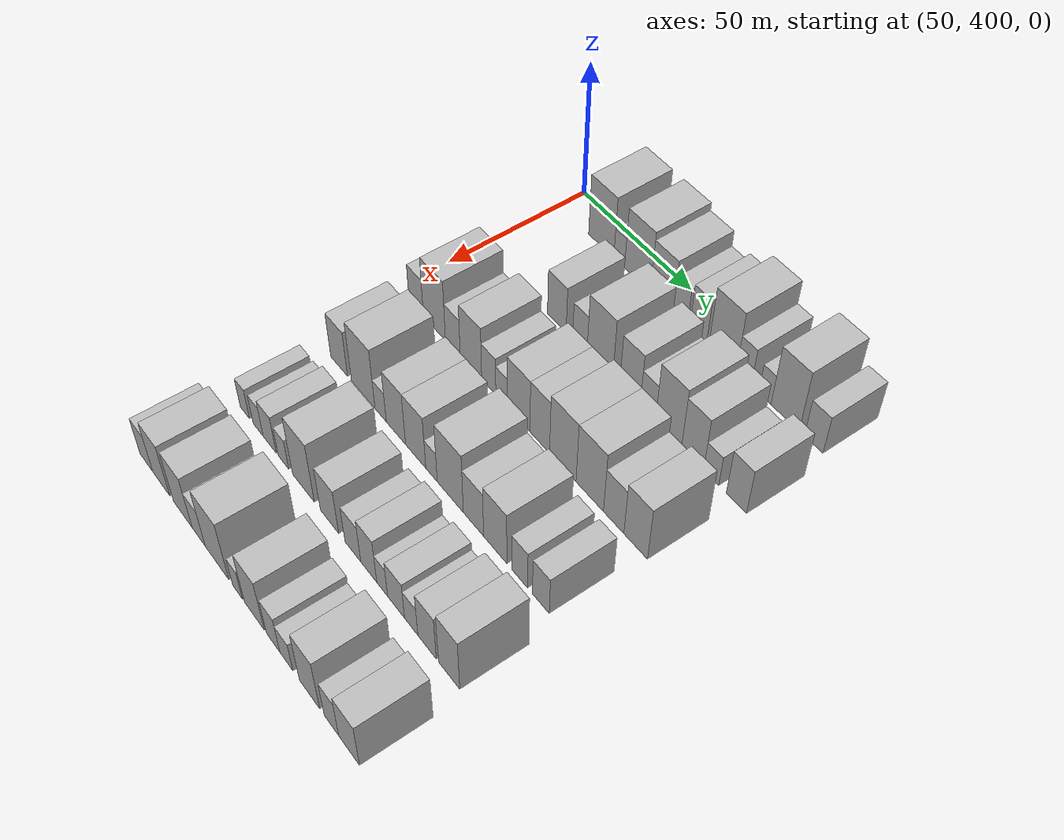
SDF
<sdf version="1.6">
 <world name="default">
  <model name="building_101">
   <static>1</static>
   <pose>50.0000 420.7283 0 0.000000 0.000000 0.000000</pose>
   <link name="link">
    <pose>0 0 12.00 0 0 0</pose>
    <collision name="collision"><geometry><box><size>20.0000 11.9931 24.0000</size></box></geometry></collision>
    <visual name="visual">
     <cast_shadows>0</cast_shadows>
     <geometry><box><size>20.0000 11.9931 24.0000</size></box></geometry>
     <material>
      <script>
       <uri>model://HANNAS_wall/materials/scripts</uri>
       <uri>model://HANNAS_wall/materials/textures</uri>
       <name>vrc/HANNAS_wall</name>
      </script>
     </material>
    </visual>
   </link>
  </model>
  <model name="building_102">
   <static>1</static>
   <pose>50.0000 429.2254 0 0.000000 0.000000 0.000000</pose>
   <link name="link">
    <pose>0 0 6.00 0 0 0</pose>
    <collision name="collision"><geometry><box><size>20.0000 5.0011 12.0000</size></box></geometry></collision>
    <visual name="visual">
     <cast_shadows>0</cast_shadows>
     <geometry><box><size>20.0000 5.0011 12.0000</size></box></geometry>
     <material>
      <script>
       <uri>model://HANNAS_wall/materials/scripts</uri>
       <uri>model://HANNAS_wall/materials/textures</uri>
       <name>vrc/HANNAS_wall</name>
      </script>
     </material>
    </visual>
   </link>
  </model>
  <model name="building_103">
   <static>1</static>
   <pose>50.0000 437.6671 0 0.000000 0.000000 0.000000</pose>
   <link name="link">
    <pose>0 0 12.00 0 0 0</pose>
    <collision name="collision"><geometry><box><size>20.0000 11.8823 24.0000</size></box></geometry></collision>
    <visual name="visual">
     <cast_shadows>0</cast_shadows>
     <geometry><box><size>20.0000 11.8823 24.0000</size></box></geometry>
     <material>
      <script>
       <uri>model://HANNAS_wall/materials/scripts</uri>
       <uri>model://HANNAS_wall/materials/textures</uri>
       <name>vrc/HANNAS_wall</name>
      </script>
     </material>
    </visual>
   </link>
  </model>
  <model name="building_104">
   <static>1</static>
   <pose>50.0000 448.6362 0 0.000000 0.000000 0.000000</pose>
   <link name="link">
    <pose>0 0 10.50 0 0 0</pose>
    <collision name="collision"><geometry><box><size>20.0000 10.0559 21.0000</size></box></geometry></collision>
    <visual name="visual">
     <cast_shadows>0</cast_shadows>
     <geometry><box><size>20.0000 10.0559 21.0000</size></box></geometry>
     <material>
      <script>
       <uri>model://HANNAS_wall/materials/scripts</uri>
       <uri>model://HANNAS_wall/materials/textures</uri>
       <name>vrc/HANNAS_wall</name>
      </script>
     </material>
    </visual>
   </link>
  </model>
  <model name="building_105">
   <static>1</static>
   <pose>50.0000 456.7683 0 0.000000 0.000000 0.000000</pose>
   <link name="link">
    <pose>0 0 7.50 0 0 0</pose>
    <collision name="collision"><geometry><box><size>20.0000 6.2082 15.0000</size></box></geometry></collision>
    <visual name="visual">
     <cast_shadows>0</cast_shadows>
     <geometry><box><size>20.0000 6.2082 15.0000</size></box></geometry>
     <material>
      <script>
       <uri>model://HANNAS_wall/materials/scripts</uri>
       <uri>model://HANNAS_wall/materials/textures</uri>
       <name>vrc/HANNAS_wall</name>
      </script>
     </material>
    </visual>
   </link>
  </model>
  <model name="building_106">
   <static>1</static>
   <pose>50.0000 464.4833 0 0.000000 0.000000 0.000000</pose>
   <link name="link">
    <pose>0 0 9.00 0 0 0</pose>
    <collision name="collision"><geometry><box><size>20.0000 7.2217 18.0000</size></box></geometry></collision>
    <visual name="visual">
     <cast_shadows>0</cast_shadows>
     <geometry><box><size>20.0000 7.2217 18.0000</size></box></geometry>
     <material>
      <script>
       <uri>model://HANNAS_wall/materials/scripts</uri>
       <uri>model://HANNAS_wall/materials/textures</uri>
       <name>vrc/HANNAS_wall</name>
      </script>
     </material>
    </visual>
   </link>
  </model>
  <model name="building_107">
   <static>1</static>
   <pose>50.0000 474.8473 0 0.000000 0.000000 0.000000</pose>
   <link name="link">
    <pose>0 0 12.00 0 0 0</pose>
    <collision name="collision"><geometry><box><size>20.0000 11.5063 24.0000</size></box></geometry></collision>
    <visual name="visual">
     <cast_shadows>0</cast_shadows>
     <geometry><box><size>20.0000 11.5063 24.0000</size></box></geometry>
     <material>
      <script>
       <uri>model://HANNAS_wall/materials/scripts</uri>
       <uri>model://HANNAS_wall/materials/textures</uri>
       <name>vrc/HANNAS_wall</name>
      </script>
     </material>
    </visual>
   </link>
  </model>
  <model name="building_108">
   <static>1</static>
   <pose>50.0000 483.6590 0 0.000000 0.000000 0.000000</pose>
   <link name="link">
    <pose>0 0 7.50 0 0 0</pose>
    <collision name="collision"><geometry><box><size>20.0000 6.1172 15.0000</size></box></geometry></collision>
    <visual name="visual">
     <cast_shadows>0</cast_shadows>
     <geometry><box><size>20.0000 6.1172 15.0000</size></box></geometry>
     <material>
      <script>
       <uri>model://HANNAS_wall/materials/scripts</uri>
       <uri>model://HANNAS_wall/materials/textures</uri>
       <name>vrc/HANNAS_wall</name>
      </script>
     </material>
    </visual>
   </link>
  </model>
  <model name="building_109">
   <static>1</static>
   <pose>50.0000 492.1806 0 0.000000 0.000000 0.000000</pose>
   <link name="link">
    <pose>0 0 6.00 0 0 0</pose>
    <collision name="collision"><geometry><box><size>20.0000 4.9259 12.0000</size></box></geometry></collision>
    <visual name="visual">
     <cast_shadows>0</cast_shadows>
     <geometry><box><size>20.0000 4.9259 12.0000</size></box></geometry>
     <material>
      <script>
       <uri>model://HANNAS_wall/materials/scripts</uri>
       <uri>model://HANNAS_wall/materials/textures</uri>
       <name>vrc/HANNAS_wall</name>
      </script>
     </material>
    </visual>
   </link>
  </model>
  <model name="building_110">
   <static>1</static>
   <pose>50.0000 500.1746 0 0.000000 0.000000 0.000000</pose>
   <link name="link">
    <pose>0 0 12.00 0 0 0</pose>
    <collision name="collision"><geometry><box><size>20.0000 11.0621 24.0000</size></box></geometry></collision>
    <visual name="visual">
     <cast_shadows>0</cast_shadows>
     <geometry><box><size>20.0000 11.0621 24.0000</size></box></geometry>
     <material>
      <script>
       <uri>model://HANNAS_wall/materials/scripts</uri>
       <uri>model://HANNAS_wall/materials/textures</uri>
       <name>vrc/HANNAS_wall</name>
      </script>
     </material>
    </visual>
   </link>
  </model>
  <model name="building_111">
   <static>1</static>
   <pose>50.0000 511.2587 0 0.000000 0.000000 0.000000</pose>
   <link name="link">
    <pose>0 0 7.50 0 0 0</pose>
    <collision name="collision"><geometry><box><size>20.0000 7.1062 15.0000</size></box></geometry></collision>
    <visual name="visual">
     <cast_shadows>0</cast_shadows>
     <geometry><box><size>20.0000 7.1062 15.0000</size></box></geometry>
     <material>
      <script>
       <uri>model://HANNAS_wall/materials/scripts</uri>
       <uri>model://HANNAS_wall/materials/textures</uri>
       <name>vrc/HANNAS_wall</name>
      </script>
     </material>
    </visual>
   </link>
  </model>
  <model name="building_221">
   <static>1</static>
   <pose>79.0000 437.3411 0 0.000000 0.000000 0.000000</pose>
   <link name="link">
    <pose>0 0 9.00 0 0 0</pose>
    <collision name="collision"><geometry><box><size>20.0000 8.6827 18.0000</size></box></geometry></collision>
    <visual name="visual">
     <cast_shadows>0</cast_shadows>
     <geometry><box><size>20.0000 8.6827 18.0000</size></box></geometry>
     <material>
      <script>
       <uri>model://HANNAS_wall/materials/scripts</uri>
       <uri>model://HANNAS_wall/materials/textures</uri>
       <name>vrc/HANNAS_wall</name>
      </script>
     </material>
    </visual>
   </link>
  </model>
  <model name="building_222">
   <static>1</static>
   <pose>79.0000 447.9605 0 0.000000 0.000000 0.000000</pose>
   <link name="link">
    <pose>0 0 7.50 0 0 0</pose>
    <collision name="collision"><geometry><box><size>20.0000 6.5560 15.0000</size></box></geometry></collision>
    <visual name="visual">
     <cast_shadows>0</cast_shadows>
     <geometry><box><size>20.0000 6.5560 15.0000</size></box></geometry>
     <material>
      <script>
       <uri>model://HANNAS_wall/materials/scripts</uri>
       <uri>model://HANNAS_wall/materials/textures</uri>
       <name>vrc/HANNAS_wall</name>
      </script>
     </material>
    </visual>
   </link>
  </model>
  <model name="building_223">
   <static>1</static>
   <pose>79.0000 456.9536 0 0.000000 0.000000 0.000000</pose>
   <link name="link">
    <pose>0 0 12.00 0 0 0</pose>
    <collision name="collision"><geometry><box><size>20.0000 11.4301 24.0000</size></box></geometry></collision>
    <visual name="visual">
     <cast_shadows>0</cast_shadows>
     <geometry><box><size>20.0000 11.4301 24.0000</size></box></geometry>
     <material>
      <script>
       <uri>model://HANNAS_wall/materials/scripts</uri>
       <uri>model://HANNAS_wall/materials/textures</uri>
       <name>vrc/HANNAS_wall</name>
      </script>
     </material>
    </visual>
   </link>
  </model>
  <model name="building_224">
   <static>1</static>
   <pose>79.0000 470.0552 0 0.000000 0.000000 0.000000</pose>
   <link name="link">
    <pose>0 0 10.50 0 0 0</pose>
    <collision name="collision"><geometry><box><size>20.0000 8.7731 21.0000</size></box></geometry></collision>
    <visual name="visual">
     <cast_shadows>0</cast_shadows>
     <geometry><box><size>20.0000 8.7731 21.0000</size></box></geometry>
     <material>
      <script>
       <uri>model://HANNAS_wall/materials/scripts</uri>
       <uri>model://HANNAS_wall/materials/textures</uri>
       <name>vrc/HANNAS_wall</name>
      </script>
     </material>
    </visual>
   </link>
  </model>
  <model name="building_225">
   <static>1</static>
   <pose>79.0000 477.6667 0 0.000000 0.000000 0.000000</pose>
   <link name="link">
    <pose>0 0 7.50 0 0 0</pose>
    <collision name="collision"><geometry><box><size>20.0000 6.4498 15.0000</size></box></geometry></collision>
    <visual name="visual">
     <cast_shadows>0</cast_shadows>
     <geometry><box><size>20.0000 6.4498 15.0000</size></box></geometry>
     <material>
      <script>
       <uri>model://HANNAS_wall/materials/scripts</uri>
       <uri>model://HANNAS_wall/materials/textures</uri>
       <name>vrc/HANNAS_wall</name>
      </script>
     </material>
    </visual>
   </link>
  </model>
  <model name="building_226">
   <static>1</static>
   <pose>79.0000 486.2856 0 0.000000 0.000000 0.000000</pose>
   <link name="link">
    <pose>0 0 12.00 0 0 0</pose>
    <collision name="collision"><geometry><box><size>20.0000 10.7881 24.0000</size></box></geometry></collision>
    <visual name="visual">
     <cast_shadows>0</cast_shadows>
     <geometry><box><size>20.0000 10.7881 24.0000</size></box></geometry>
     <material>
      <script>
       <uri>model://HANNAS_wall/materials/scripts</uri>
       <uri>model://HANNAS_wall/materials/textures</uri>
       <name>vrc/HANNAS_wall</name>
      </script>
     </material>
    </visual>
   </link>
  </model>
  <model name="building_227">
   <static>1</static>
   <pose>79.0000 496.1468 0 0.000000 0.000000 0.000000</pose>
   <link name="link">
    <pose>0 0 10.50 0 0 0</pose>
    <collision name="collision"><geometry><box><size>20.0000 8.9344 21.0000</size></box></geometry></collision>
    <visual name="visual">
     <cast_shadows>0</cast_shadows>
     <geometry><box><size>20.0000 8.9344 21.0000</size></box></geometry>
     <material>
      <script>
       <uri>model://HANNAS_wall/materials/scripts</uri>
       <uri>model://HANNAS_wall/materials/textures</uri>
       <name>vrc/HANNAS_wall</name>
      </script>
     </material>
    </visual>
   </link>
  </model>
  <model name="building_228">
   <static>1</static>
   <pose>79.0000 503.5847 0 0.000000 0.000000 0.000000</pose>
   <link name="link">
    <pose>0 0 6.00 0 0 0</pose>
    <collision name="collision"><geometry><box><size>20.0000 5.9413 12.0000</size></box></geometry></collision>
    <visual name="visual">
     <cast_shadows>0</cast_shadows>
     <geometry><box><size>20.0000 5.9413 12.0000</size></box></geometry>
     <material>
      <script>
       <uri>model://HANNAS_wall/materials/scripts</uri>
       <uri>model://HANNAS_wall/materials/textures</uri>
       <name>vrc/HANNAS_wall</name>
      </script>
     </material>
    </visual>
   </link>
  </model>
  <model name="building_229">
   <static>1</static>
   <pose>79.0000 513.4281 0 0.000000 0.000000 0.000000</pose>
   <link name="link">
    <pose>0 0 9.00 0 0 0</pose>
    <collision name="collision"><geometry><box><size>20.0000 7.7455 18.0000</size></box></geometry></collision>
    <visual name="visual">
     <cast_shadows>0</cast_shadows>
     <geometry><box><size>20.0000 7.7455 18.0000</size></box></geometry>
     <material>
      <script>
       <uri>model://HANNAS_wall/materials/scripts</uri>
       <uri>model://HANNAS_wall/materials/textures</uri>
       <name>vrc/HANNAS_wall</name>
      </script>
     </material>
    </visual>
   </link>
  </model>
  <model name="building_328">
   <static>1</static>
   <pose>108.0000 409.5219 0 0.000000 0.000000 0.000000</pose>
   <link name="link">
    <pose>0 0 7.50 0 0 0</pose>
    <collision name="collision"><geometry><box><size>20.0000 7.3117 15.0000</size></box></geometry></collision>
    <visual name="visual">
     <cast_shadows>0</cast_shadows>
     <geometry><box><size>20.0000 7.3117 15.0000</size></box></geometry>
     <material>
      <script>
       <uri>model://HANNAS_wall/materials/scripts</uri>
       <uri>model://HANNAS_wall/materials/textures</uri>
       <name>vrc/HANNAS_wall</name>
      </script>
     </material>
    </visual>
   </link>
  </model>
  <model name="building_329">
   <static>1</static>
   <pose>108.0000 418.7016 0 0.000000 0.000000 0.000000</pose>
   <link name="link">
    <pose>0 0 12.00 0 0 0</pose>
    <collision name="collision"><geometry><box><size>20.0000 11.0476 24.0000</size></box></geometry></collision>
    <visual name="visual">
     <cast_shadows>0</cast_shadows>
     <geometry><box><size>20.0000 11.0476 24.0000</size></box></geometry>
     <material>
      <script>
       <uri>model://HANNAS_wall/materials/scripts</uri>
       <uri>model://HANNAS_wall/materials/textures</uri>
       <name>vrc/HANNAS_wall</name>
      </script>
     </material>
    </visual>
   </link>
  </model>
  <model name="building_330">
   <static>1</static>
   <pose>108.0000 427.8546 0 0.000000 0.000000 0.000000</pose>
   <link name="link">
    <pose>0 0 7.50 0 0 0</pose>
    <collision name="collision"><geometry><box><size>20.0000 7.2585 15.0000</size></box></geometry></collision>
    <visual name="visual">
     <cast_shadows>0</cast_shadows>
     <geometry><box><size>20.0000 7.2585 15.0000</size></box></geometry>
     <material>
      <script>
       <uri>model://HANNAS_wall/materials/scripts</uri>
       <uri>model://HANNAS_wall/materials/textures</uri>
       <name>vrc/HANNAS_wall</name>
      </script>
     </material>
    </visual>
   </link>
  </model>
  <model name="building_331">
   <static>1</static>
   <pose>108.0000 436.6164 0 0.000000 0.000000 0.000000</pose>
   <link name="link">
    <pose>0 0 10.50 0 0 0</pose>
    <collision name="collision"><geometry><box><size>20.0000 10.2651 21.0000</size></box></geometry></collision>
    <visual name="visual">
     <cast_shadows>0</cast_shadows>
     <geometry><box><size>20.0000 10.2651 21.0000</size></box></geometry>
     <material>
      <script>
       <uri>model://HANNAS_wall/materials/scripts</uri>
       <uri>model://HANNAS_wall/materials/textures</uri>
       <name>vrc/HANNAS_wall</name>
      </script>
     </material>
    </visual>
   </link>
  </model>
  <model name="building_332">
   <static>1</static>
   <pose>108.0000 445.0674 0 0.000000 0.000000 0.000000</pose>
   <link name="link">
    <pose>0 0 7.50 0 0 0</pose>
    <collision name="collision"><geometry><box><size>20.0000 6.6370 15.0000</size></box></geometry></collision>
    <visual name="visual">
     <cast_shadows>0</cast_shadows>
     <geometry><box><size>20.0000 6.6370 15.0000</size></box></geometry>
     <material>
      <script>
       <uri>model://HANNAS_wall/materials/scripts</uri>
       <uri>model://HANNAS_wall/materials/textures</uri>
       <name>vrc/HANNAS_wall</name>
      </script>
     </material>
    </visual>
   </link>
  </model>
  <model name="building_333">
   <static>1</static>
   <pose>108.0000 451.0338 0 0.000000 0.000000 0.000000</pose>
   <link name="link">
    <pose>0 0 6.00 0 0 0</pose>
    <collision name="collision"><geometry><box><size>20.0000 5.2958 12.0000</size></box></geometry></collision>
    <visual name="visual">
     <cast_shadows>0</cast_shadows>
     <geometry><box><size>20.0000 5.2958 12.0000</size></box></geometry>
     <material>
      <script>
       <uri>model://HANNAS_wall/materials/scripts</uri>
       <uri>model://HANNAS_wall/materials/textures</uri>
       <name>vrc/HANNAS_wall</name>
      </script>
     </material>
    </visual>
   </link>
  </model>
  <model name="building_334">
   <static>1</static>
   <pose>108.0000 458.7897 0 0.000000 0.000000 0.000000</pose>
   <link name="link">
    <pose>0 0 10.50 0 0 0</pose>
    <collision name="collision"><geometry><box><size>20.0000 10.2161 21.0000</size></box></geometry></collision>
    <visual name="visual">
     <cast_shadows>0</cast_shadows>
     <geometry><box><size>20.0000 10.2161 21.0000</size></box></geometry>
     <material>
      <script>
       <uri>model://HANNAS_wall/materials/scripts</uri>
       <uri>model://HANNAS_wall/materials/textures</uri>
       <name>vrc/HANNAS_wall</name>
      </script>
     </material>
    </visual>
   </link>
  </model>
  <model name="building_335">
   <static>1</static>
   <pose>108.0000 468.2297 0 0.000000 0.000000 0.000000</pose>
   <link name="link">
    <pose>0 0 10.50 0 0 0</pose>
    <collision name="collision"><geometry><box><size>20.0000 8.6639 21.0000</size></box></geometry></collision>
    <visual name="visual">
     <cast_shadows>0</cast_shadows>
     <geometry><box><size>20.0000 8.6639 21.0000</size></box></geometry>
     <material>
      <script>
       <uri>model://HANNAS_wall/materials/scripts</uri>
       <uri>model://HANNAS_wall/materials/textures</uri>
       <name>vrc/HANNAS_wall</name>
      </script>
     </material>
    </visual>
   </link>
  </model>
  <model name="building_336">
   <static>1</static>
   <pose>108.0000 478.2701 0 0.000000 0.000000 0.000000</pose>
   <link name="link">
    <pose>0 0 12.00 0 0 0</pose>
    <collision name="collision"><geometry><box><size>20.0000 11.4169 24.0000</size></box></geometry></collision>
    <visual name="visual">
     <cast_shadows>0</cast_shadows>
     <geometry><box><size>20.0000 11.4169 24.0000</size></box></geometry>
     <material>
      <script>
       <uri>model://HANNAS_wall/materials/scripts</uri>
       <uri>model://HANNAS_wall/materials/textures</uri>
       <name>vrc/HANNAS_wall</name>
      </script>
     </material>
    </visual>
   </link>
  </model>
  <model name="building_337">
   <static>1</static>
   <pose>108.0000 489.6992 0 0.000000 0.000000 0.000000</pose>
   <link name="link">
    <pose>0 0 12.00 0 0 0</pose>
    <collision name="collision"><geometry><box><size>20.0000 11.4413 24.0000</size></box></geometry></collision>
    <visual name="visual">
     <cast_shadows>0</cast_shadows>
     <geometry><box><size>20.0000 11.4413 24.0000</size></box></geometry>
     <material>
      <script>
       <uri>model://HANNAS_wall/materials/scripts</uri>
       <uri>model://HANNAS_wall/materials/textures</uri>
       <name>vrc/HANNAS_wall</name>
      </script>
     </material>
    </visual>
   </link>
  </model>
  <model name="building_338">
   <static>1</static>
   <pose>108.0000 499.5486 0 0.000000 0.000000 0.000000</pose>
   <link name="link">
    <pose>0 0 9.00 0 0 0</pose>
    <collision name="collision"><geometry><box><size>20.0000 8.2576 18.0000</size></box></geometry></collision>
    <visual name="visual">
     <cast_shadows>0</cast_shadows>
     <geometry><box><size>20.0000 8.2576 18.0000</size></box></geometry>
     <material>
      <script>
       <uri>model://HANNAS_wall/materials/scripts</uri>
       <uri>model://HANNAS_wall/materials/textures</uri>
       <name>vrc/HANNAS_wall</name>
      </script>
     </material>
    </visual>
   </link>
  </model>
  <model name="building_339">
   <static>1</static>
   <pose>108.0000 508.3680 0 0.000000 0.000000 0.000000</pose>
   <link name="link">
    <pose>0 0 10.50 0 0 0</pose>
    <collision name="collision"><geometry><box><size>20.0000 9.3811 21.0000</size></box></geometry></collision>
    <visual name="visual">
     <cast_shadows>0</cast_shadows>
     <geometry><box><size>20.0000 9.3811 21.0000</size></box></geometry>
     <material>
      <script>
       <uri>model://HANNAS_wall/materials/scripts</uri>
       <uri>model://HANNAS_wall/materials/textures</uri>
       <name>vrc/HANNAS_wall</name>
      </script>
     </material>
    </visual>
   </link>
  </model>
  <model name="building_448">
   <static>1</static>
   <pose>137.0000 414.8694 0 0.000000 0.000000 0.000000</pose>
   <link name="link">
    <pose>0 0 9.00 0 0 0</pose>
    <collision name="collision"><geometry><box><size>20.0000 8.6862 18.0000</size></box></geometry></collision>
    <visual name="visual">
     <cast_shadows>0</cast_shadows>
     <geometry><box><size>20.0000 8.6862 18.0000</size></box></geometry>
     <material>
      <script>
       <uri>model://HANNAS_wall/materials/scripts</uri>
       <uri>model://HANNAS_wall/materials/textures</uri>
       <name>vrc/HANNAS_wall</name>
      </script>
     </material>
    </visual>
   </link>
  </model>
  <model name="building_449">
   <static>1</static>
   <pose>137.0000 427.1642 0 0.000000 0.000000 0.000000</pose>
   <link name="link">
    <pose>0 0 12.00 0 0 0</pose>
    <collision name="collision"><geometry><box><size>20.0000 11.9036 24.0000</size></box></geometry></collision>
    <visual name="visual">
     <cast_shadows>0</cast_shadows>
     <geometry><box><size>20.0000 11.9036 24.0000</size></box></geometry>
     <material>
      <script>
       <uri>model://HANNAS_wall/materials/scripts</uri>
       <uri>model://HANNAS_wall/materials/textures</uri>
       <name>vrc/HANNAS_wall</name>
      </script>
     </material>
    </visual>
   </link>
  </model>
  <model name="building_450">
   <static>1</static>
   <pose>137.0000 435.9117 0 0.000000 0.000000 0.000000</pose>
   <link name="link">
    <pose>0 0 6.00 0 0 0</pose>
    <collision name="collision"><geometry><box><size>20.0000 5.5913 12.0000</size></box></geometry></collision>
    <visual name="visual">
     <cast_shadows>0</cast_shadows>
     <geometry><box><size>20.0000 5.5913 12.0000</size></box></geometry>
     <material>
      <script>
       <uri>model://HANNAS_wall/materials/scripts</uri>
       <uri>model://HANNAS_wall/materials/textures</uri>
       <name>vrc/HANNAS_wall</name>
      </script>
     </material>
    </visual>
   </link>
  </model>
  <model name="building_451">
   <static>1</static>
   <pose>137.0000 443.3668 0 0.000000 0.000000 0.000000</pose>
   <link name="link">
    <pose>0 0 10.50 0 0 0</pose>
    <collision name="collision"><geometry><box><size>20.0000 9.3189 21.0000</size></box></geometry></collision>
    <visual name="visual">
     <cast_shadows>0</cast_shadows>
     <geometry><box><size>20.0000 9.3189 21.0000</size></box></geometry>
     <material>
      <script>
       <uri>model://HANNAS_wall/materials/scripts</uri>
       <uri>model://HANNAS_wall/materials/textures</uri>
       <name>vrc/HANNAS_wall</name>
      </script>
     </material>
    </visual>
   </link>
  </model>
  <model name="building_452">
   <static>1</static>
   <pose>137.0000 452.8009 0 0.000000 0.000000 0.000000</pose>
   <link name="link">
    <pose>0 0 10.50 0 0 0</pose>
    <collision name="collision"><geometry><box><size>20.0000 9.5494 21.0000</size></box></geometry></collision>
    <visual name="visual">
     <cast_shadows>0</cast_shadows>
     <geometry><box><size>20.0000 9.5494 21.0000</size></box></geometry>
     <material>
      <script>
       <uri>model://HANNAS_wall/materials/scripts</uri>
       <uri>model://HANNAS_wall/materials/textures</uri>
       <name>vrc/HANNAS_wall</name>
      </script>
     </material>
    </visual>
   </link>
  </model>
  <model name="building_453">
   <static>1</static>
   <pose>137.0000 460.2470 0 0.000000 0.000000 0.000000</pose>
   <link name="link">
    <pose>0 0 6.00 0 0 0</pose>
    <collision name="collision"><geometry><box><size>20.0000 5.3427 12.0000</size></box></geometry></collision>
    <visual name="visual">
     <cast_shadows>0</cast_shadows>
     <geometry><box><size>20.0000 5.3427 12.0000</size></box></geometry>
     <material>
      <script>
       <uri>model://HANNAS_wall/materials/scripts</uri>
       <uri>model://HANNAS_wall/materials/textures</uri>
       <name>vrc/HANNAS_wall</name>
      </script>
     </material>
    </visual>
   </link>
  </model>
  <model name="building_454">
   <static>1</static>
   <pose>137.0000 468.8206 0 0.000000 0.000000 0.000000</pose>
   <link name="link">
    <pose>0 0 12.00 0 0 0</pose>
    <collision name="collision"><geometry><box><size>20.0000 11.8045 24.0000</size></box></geometry></collision>
    <visual name="visual">
     <cast_shadows>0</cast_shadows>
     <geometry><box><size>20.0000 11.8045 24.0000</size></box></geometry>
     <material>
      <script>
       <uri>model://HANNAS_wall/materials/scripts</uri>
       <uri>model://HANNAS_wall/materials/textures</uri>
       <name>vrc/HANNAS_wall</name>
      </script>
     </material>
    </visual>
   </link>
  </model>
  <model name="building_455">
   <static>1</static>
   <pose>137.0000 479.1661 0 0.000000 0.000000 0.000000</pose>
   <link name="link">
    <pose>0 0 9.00 0 0 0</pose>
    <collision name="collision"><geometry><box><size>20.0000 8.8866 18.0000</size></box></geometry></collision>
    <visual name="visual">
     <cast_shadows>0</cast_shadows>
     <geometry><box><size>20.0000 8.8866 18.0000</size></box></geometry>
     <material>
      <script>
       <uri>model://HANNAS_wall/materials/scripts</uri>
       <uri>model://HANNAS_wall/materials/textures</uri>
       <name>vrc/HANNAS_wall</name>
      </script>
     </material>
    </visual>
   </link>
  </model>
  <model name="building_456">
   <static>1</static>
   <pose>137.0000 488.5985 0 0.000000 0.000000 0.000000</pose>
   <link name="link">
    <pose>0 0 10.50 0 0 0</pose>
    <collision name="collision"><geometry><box><size>20.0000 9.9782 21.0000</size></box></geometry></collision>
    <visual name="visual">
     <cast_shadows>0</cast_shadows>
     <geometry><box><size>20.0000 9.9782 21.0000</size></box></geometry>
     <material>
      <script>
       <uri>model://HANNAS_wall/materials/scripts</uri>
       <uri>model://HANNAS_wall/materials/textures</uri>
       <name>vrc/HANNAS_wall</name>
      </script>
     </material>
    </visual>
   </link>
  </model>
  <model name="building_457">
   <static>1</static>
   <pose>137.0000 498.9072 0 0.000000 0.000000 0.000000</pose>
   <link name="link">
    <pose>0 0 7.50 0 0 0</pose>
    <collision name="collision"><geometry><box><size>20.0000 6.6392 15.0000</size></box></geometry></collision>
    <visual name="visual">
     <cast_shadows>0</cast_shadows>
     <geometry><box><size>20.0000 6.6392 15.0000</size></box></geometry>
     <material>
      <script>
       <uri>model://HANNAS_wall/materials/scripts</uri>
       <uri>model://HANNAS_wall/materials/textures</uri>
       <name>vrc/HANNAS_wall</name>
      </script>
     </material>
    </visual>
   </link>
  </model>
  <model name="building_458">
   <static>1</static>
   <pose>137.0000 507.6364 0 0.000000 0.000000 0.000000</pose>
   <link name="link">
    <pose>0 0 7.50 0 0 0</pose>
    <collision name="collision"><geometry><box><size>20.0000 6.8193 15.0000</size></box></geometry></collision>
    <visual name="visual">
     <cast_shadows>0</cast_shadows>
     <geometry><box><size>20.0000 6.8193 15.0000</size></box></geometry>
     <material>
      <script>
       <uri>model://HANNAS_wall/materials/scripts</uri>
       <uri>model://HANNAS_wall/materials/textures</uri>
       <name>vrc/HANNAS_wall</name>
      </script>
     </material>
    </visual>
   </link>
  </model>
  <model name="building_564">
   <static>1</static>
   <pose>166.0000 413.8024 0 0.000000 0.000000 0.000000</pose>
   <link name="link">
    <pose>0 0 6.00 0 0 0</pose>
    <collision name="collision"><geometry><box><size>20.0000 4.9541 12.0000</size></box></geometry></collision>
    <visual name="visual">
     <cast_shadows>0</cast_shadows>
     <geometry><box><size>20.0000 4.9541 12.0000</size></box></geometry>
     <material>
      <script>
       <uri>model://HANNAS_wall/materials/scripts</uri>
       <uri>model://HANNAS_wall/materials/textures</uri>
       <name>vrc/HANNAS_wall</name>
      </script>
     </material>
    </visual>
   </link>
  </model>
  <model name="building_565">
   <static>1</static>
   <pose>166.0000 420.9533 0 0.000000 0.000000 0.000000</pose>
   <link name="link">
    <pose>0 0 6.00 0 0 0</pose>
    <collision name="collision"><geometry><box><size>20.0000 5.3476 12.0000</size></box></geometry></collision>
    <visual name="visual">
     <cast_shadows>0</cast_shadows>
     <geometry><box><size>20.0000 5.3476 12.0000</size></box></geometry>
     <material>
      <script>
       <uri>model://HANNAS_wall/materials/scripts</uri>
       <uri>model://HANNAS_wall/materials/textures</uri>
       <name>vrc/HANNAS_wall</name>
      </script>
     </material>
    </visual>
   </link>
  </model>
  <model name="building_566">
   <static>1</static>
   <pose>166.0000 427.0407 0 0.000000 0.000000 0.000000</pose>
   <link name="link">
    <pose>0 0 7.50 0 0 0</pose>
    <collision name="collision"><geometry><box><size>20.0000 6.8272 15.0000</size></box></geometry></collision>
    <visual name="visual">
     <cast_shadows>0</cast_shadows>
     <geometry><box><size>20.0000 6.8272 15.0000</size></box></geometry>
     <material>
      <script>
       <uri>model://HANNAS_wall/materials/scripts</uri>
       <uri>model://HANNAS_wall/materials/textures</uri>
       <name>vrc/HANNAS_wall</name>
      </script>
     </material>
    </visual>
   </link>
  </model>
  <model name="building_567">
   <static>1</static>
   <pose>166.0000 434.1524 0 0.000000 0.000000 0.000000</pose>
   <link name="link">
    <pose>0 0 6.00 0 0 0</pose>
    <collision name="collision"><geometry><box><size>20.0000 5.3964 12.0000</size></box></geometry></collision>
    <visual name="visual">
     <cast_shadows>0</cast_shadows>
     <geometry><box><size>20.0000 5.3964 12.0000</size></box></geometry>
     <material>
      <script>
       <uri>model://HANNAS_wall/materials/scripts</uri>
       <uri>model://HANNAS_wall/materials/textures</uri>
       <name>vrc/HANNAS_wall</name>
      </script>
     </material>
    </visual>
   </link>
  </model>
  <model name="building_568">
   <static>1</static>
   <pose>166.0000 444.2644 0 0.000000 0.000000 0.000000</pose>
   <link name="link">
    <pose>0 0 12.00 0 0 0</pose>
    <collision name="collision"><geometry><box><size>20.0000 10.8276 24.0000</size></box></geometry></collision>
    <visual name="visual">
     <cast_shadows>0</cast_shadows>
     <geometry><box><size>20.0000 10.8276 24.0000</size></box></geometry>
     <material>
      <script>
       <uri>model://HANNAS_wall/materials/scripts</uri>
       <uri>model://HANNAS_wall/materials/textures</uri>
       <name>vrc/HANNAS_wall</name>
      </script>
     </material>
    </visual>
   </link>
  </model>
  <model name="building_569">
   <static>1</static>
   <pose>166.0000 457.0839 0 0.000000 0.000000 0.000000</pose>
   <link name="link">
    <pose>0 0 9.00 0 0 0</pose>
    <collision name="collision"><geometry><box><size>20.0000 8.8113 18.0000</size></box></geometry></collision>
    <visual name="visual">
     <cast_shadows>0</cast_shadows>
     <geometry><box><size>20.0000 8.8113 18.0000</size></box></geometry>
     <material>
      <script>
       <uri>model://HANNAS_wall/materials/scripts</uri>
       <uri>model://HANNAS_wall/materials/textures</uri>
       <name>vrc/HANNAS_wall</name>
      </script>
     </material>
    </visual>
   </link>
  </model>
  <model name="building_570">
   <static>1</static>
   <pose>166.0000 468.2028 0 0.000000 0.000000 0.000000</pose>
   <link name="link">
    <pose>0 0 7.50 0 0 0</pose>
    <collision name="collision"><geometry><box><size>20.0000 7.4265 15.0000</size></box></geometry></collision>
    <visual name="visual">
     <cast_shadows>0</cast_shadows>
     <geometry><box><size>20.0000 7.4265 15.0000</size></box></geometry>
     <material>
      <script>
       <uri>model://HANNAS_wall/materials/scripts</uri>
       <uri>model://HANNAS_wall/materials/textures</uri>
       <name>vrc/HANNAS_wall</name>
      </script>
     </material>
    </visual>
   </link>
  </model>
  <model name="building_571">
   <static>1</static>
   <pose>166.0000 475.5832 0 0.000000 0.000000 0.000000</pose>
   <link name="link">
    <pose>0 0 9.00 0 0 0</pose>
    <collision name="collision"><geometry><box><size>20.0000 7.3344 18.0000</size></box></geometry></collision>
    <visual name="visual">
     <cast_shadows>0</cast_shadows>
     <geometry><box><size>20.0000 7.3344 18.0000</size></box></geometry>
     <material>
      <script>
       <uri>model://HANNAS_wall/materials/scripts</uri>
       <uri>model://HANNAS_wall/materials/textures</uri>
       <name>vrc/HANNAS_wall</name>
      </script>
     </material>
    </visual>
   </link>
  </model>
  <model name="building_572">
   <static>1</static>
   <pose>166.0000 481.6911 0 0.000000 0.000000 0.000000</pose>
   <link name="link">
    <pose>0 0 6.00 0 0 0</pose>
    <collision name="collision"><geometry><box><size>20.0000 4.8813 12.0000</size></box></geometry></collision>
    <visual name="visual">
     <cast_shadows>0</cast_shadows>
     <geometry><box><size>20.0000 4.8813 12.0000</size></box></geometry>
     <material>
      <script>
       <uri>model://HANNAS_wall/materials/scripts</uri>
       <uri>model://HANNAS_wall/materials/textures</uri>
       <name>vrc/HANNAS_wall</name>
      </script>
     </material>
    </visual>
   </link>
  </model>
  <model name="building_573">
   <static>1</static>
   <pose>166.0000 487.8730 0 0.000000 0.000000 0.000000</pose>
   <link name="link">
    <pose>0 0 7.50 0 0 0</pose>
    <collision name="collision"><geometry><box><size>20.0000 7.4824 15.0000</size></box></geometry></collision>
    <visual name="visual">
     <cast_shadows>0</cast_shadows>
     <geometry><box><size>20.0000 7.4824 15.0000</size></box></geometry>
     <material>
      <script>
       <uri>model://HANNAS_wall/materials/scripts</uri>
       <uri>model://HANNAS_wall/materials/textures</uri>
       <name>vrc/HANNAS_wall</name>
      </script>
     </material>
    </visual>
   </link>
  </model>
  <model name="building_574">
   <static>1</static>
   <pose>166.0000 494.5118 0 0.000000 0.000000 0.000000</pose>
   <link name="link">
    <pose>0 0 6.00 0 0 0</pose>
    <collision name="collision"><geometry><box><size>20.0000 5.7953 12.0000</size></box></geometry></collision>
    <visual name="visual">
     <cast_shadows>0</cast_shadows>
     <geometry><box><size>20.0000 5.7953 12.0000</size></box></geometry>
     <material>
      <script>
       <uri>model://HANNAS_wall/materials/scripts</uri>
       <uri>model://HANNAS_wall/materials/textures</uri>
       <name>vrc/HANNAS_wall</name>
      </script>
     </material>
    </visual>
   </link>
  </model>
  <model name="building_575">
   <static>1</static>
   <pose>166.0000 501.3100 0 0.000000 0.000000 0.000000</pose>
   <link name="link">
    <pose>0 0 9.00 0 0 0</pose>
    <collision name="collision"><geometry><box><size>20.0000 7.8011 18.0000</size></box></geometry></collision>
    <visual name="visual">
     <cast_shadows>0</cast_shadows>
     <geometry><box><size>20.0000 7.8011 18.0000</size></box></geometry>
     <material>
      <script>
       <uri>model://HANNAS_wall/materials/scripts</uri>
       <uri>model://HANNAS_wall/materials/textures</uri>
       <name>vrc/HANNAS_wall</name>
      </script>
     </material>
    </visual>
   </link>
  </model>
  <model name="building_576">
   <static>1</static>
   <pose>166.0000 510.5891 0 0.000000 0.000000 0.000000</pose>
   <link name="link">
    <pose>0 0 10.50 0 0 0</pose>
    <collision name="collision"><geometry><box><size>20.0000 8.7570 21.0000</size></box></geometry></collision>
    <visual name="visual">
     <cast_shadows>0</cast_shadows>
     <geometry><box><size>20.0000 8.7570 21.0000</size></box></geometry>
     <material>
      <script>
       <uri>model://HANNAS_wall/materials/scripts</uri>
       <uri>model://HANNAS_wall/materials/textures</uri>
       <name>vrc/HANNAS_wall</name>
      </script>
     </material>
    </visual>
   </link>
  </model>
  <model name="building_674">
   <static>1</static>
   <pose>195.0000 413.2832 0 0.000000 0.000000 0.000000</pose>
   <link name="link">
    <pose>0 0 7.50 0 0 0</pose>
    <collision name="collision"><geometry><box><size>20.0000 7.3292 15.0000</size></box></geometry></collision>
    <visual name="visual">
     <cast_shadows>0</cast_shadows>
     <geometry><box><size>20.0000 7.3292 15.0000</size></box></geometry>
     <material>
      <script>
       <uri>model://HANNAS_wall/materials/scripts</uri>
       <uri>model://HANNAS_wall/materials/textures</uri>
       <name>vrc/HANNAS_wall</name>
      </script>
     </material>
    </visual>
   </link>
  </model>
  <model name="building_675">
   <static>1</static>
   <pose>195.0000 421.6439 0 0.000000 0.000000 0.000000</pose>
   <link name="link">
    <pose>0 0 10.50 0 0 0</pose>
    <collision name="collision"><geometry><box><size>20.0000 9.3922 21.0000</size></box></geometry></collision>
    <visual name="visual">
     <cast_shadows>0</cast_shadows>
     <geometry><box><size>20.0000 9.3922 21.0000</size></box></geometry>
     <material>
      <script>
       <uri>model://HANNAS_wall/materials/scripts</uri>
       <uri>model://HANNAS_wall/materials/textures</uri>
       <name>vrc/HANNAS_wall</name>
      </script>
     </material>
    </visual>
   </link>
  </model>
  <model name="building_676">
   <static>1</static>
   <pose>195.0000 433.3503 0 0.000000 0.000000 0.000000</pose>
   <link name="link">
    <pose>0 0 10.50 0 0 0</pose>
    <collision name="collision"><geometry><box><size>20.0000 10.0206 21.0000</size></box></geometry></collision>
    <visual name="visual">
     <cast_shadows>0</cast_shadows>
     <geometry><box><size>20.0000 10.0206 21.0000</size></box></geometry>
     <material>
      <script>
       <uri>model://HANNAS_wall/materials/scripts</uri>
       <uri>model://HANNAS_wall/materials/textures</uri>
       <name>vrc/HANNAS_wall</name>
      </script>
     </material>
    </visual>
   </link>
  </model>
  <model name="building_677">
   <static>1</static>
   <pose>195.0000 441.7931 0 0.000000 0.000000 0.000000</pose>
   <link name="link">
    <pose>0 0 7.50 0 0 0</pose>
    <collision name="collision"><geometry><box><size>20.0000 6.8651 15.0000</size></box></geometry></collision>
    <visual name="visual">
     <cast_shadows>0</cast_shadows>
     <geometry><box><size>20.0000 6.8651 15.0000</size></box></geometry>
     <material>
      <script>
       <uri>model://HANNAS_wall/materials/scripts</uri>
       <uri>model://HANNAS_wall/materials/textures</uri>
       <name>vrc/HANNAS_wall</name>
      </script>
     </material>
    </visual>
   </link>
  </model>
  <model name="building_678">
   <static>1</static>
   <pose>195.0000 451.2168 0 0.000000 0.000000 0.000000</pose>
   <link name="link">
    <pose>0 0 12.00 0 0 0</pose>
    <collision name="collision"><geometry><box><size>20.0000 11.9823 24.0000</size></box></geometry></collision>
    <visual name="visual">
     <cast_shadows>0</cast_shadows>
     <geometry><box><size>20.0000 11.9823 24.0000</size></box></geometry>
     <material>
      <script>
       <uri>model://HANNAS_wall/materials/scripts</uri>
       <uri>model://HANNAS_wall/materials/textures</uri>
       <name>vrc/HANNAS_wall</name>
      </script>
     </material>
    </visual>
   </link>
  </model>
  <model name="building_679">
   <static>1</static>
   <pose>195.0000 461.6155 0 0.000000 0.000000 0.000000</pose>
   <link name="link">
    <pose>0 0 6.00 0 0 0</pose>
    <collision name="collision"><geometry><box><size>20.0000 4.8150 12.0000</size></box></geometry></collision>
    <visual name="visual">
     <cast_shadows>0</cast_shadows>
     <geometry><box><size>20.0000 4.8150 12.0000</size></box></geometry>
     <material>
      <script>
       <uri>model://HANNAS_wall/materials/scripts</uri>
       <uri>model://HANNAS_wall/materials/textures</uri>
       <name>vrc/HANNAS_wall</name>
      </script>
     </material>
    </visual>
   </link>
  </model>
  <model name="building_680">
   <static>1</static>
   <pose>195.0000 469.8132 0 0.000000 0.000000 0.000000</pose>
   <link name="link">
    <pose>0 0 10.50 0 0 0</pose>
    <collision name="collision"><geometry><box><size>20.0000 9.5803 21.0000</size></box></geometry></collision>
    <visual name="visual">
     <cast_shadows>0</cast_shadows>
     <geometry><box><size>20.0000 9.5803 21.0000</size></box></geometry>
     <material>
      <script>
       <uri>model://HANNAS_wall/materials/scripts</uri>
       <uri>model://HANNAS_wall/materials/textures</uri>
       <name>vrc/HANNAS_wall</name>
      </script>
     </material>
    </visual>
   </link>
  </model>
  <model name="building_681">
   <static>1</static>
   <pose>195.0000 478.7968 0 0.000000 0.000000 0.000000</pose>
   <link name="link">
    <pose>0 0 7.50 0 0 0</pose>
    <collision name="collision"><geometry><box><size>20.0000 6.3869 15.0000</size></box></geometry></collision>
    <visual name="visual">
     <cast_shadows>0</cast_shadows>
     <geometry><box><size>20.0000 6.3869 15.0000</size></box></geometry>
     <material>
      <script>
       <uri>model://HANNAS_wall/materials/scripts</uri>
       <uri>model://HANNAS_wall/materials/textures</uri>
       <name>vrc/HANNAS_wall</name>
      </script>
     </material>
    </visual>
   </link>
  </model>
  <model name="building_682">
   <static>1</static>
   <pose>195.0000 484.9851 0 0.000000 0.000000 0.000000</pose>
   <link name="link">
    <pose>0 0 6.00 0 0 0</pose>
    <collision name="collision"><geometry><box><size>20.0000 5.9897 12.0000</size></box></geometry></collision>
    <visual name="visual">
     <cast_shadows>0</cast_shadows>
     <geometry><box><size>20.0000 5.9897 12.0000</size></box></geometry>
     <material>
      <script>
       <uri>model://HANNAS_wall/materials/scripts</uri>
       <uri>model://HANNAS_wall/materials/textures</uri>
       <name>vrc/HANNAS_wall</name>
      </script>
     </material>
    </visual>
   </link>
  </model>
  <model name="building_683">
   <static>1</static>
   <pose>195.0000 495.5305 0 0.000000 0.000000 0.000000</pose>
   <link name="link">
    <pose>0 0 10.50 0 0 0</pose>
    <collision name="collision"><geometry><box><size>20.0000 9.1011 21.0000</size></box></geometry></collision>
    <visual name="visual">
     <cast_shadows>0</cast_shadows>
     <geometry><box><size>20.0000 9.1011 21.0000</size></box></geometry>
     <material>
      <script>
       <uri>model://HANNAS_wall/materials/scripts</uri>
       <uri>model://HANNAS_wall/materials/textures</uri>
       <name>vrc/HANNAS_wall</name>
      </script>
     </material>
    </visual>
   </link>
  </model>
  <model name="building_684">
   <static>1</static>
   <pose>195.0000 505.2444 0 0.000000 0.000000 0.000000</pose>
   <link name="link">
    <pose>0 0 7.50 0 0 0</pose>
    <collision name="collision"><geometry><box><size>20.0000 6.3268 15.0000</size></box></geometry></collision>
    <visual name="visual">
     <cast_shadows>0</cast_shadows>
     <geometry><box><size>20.0000 6.3268 15.0000</size></box></geometry>
     <material>
      <script>
       <uri>model://HANNAS_wall/materials/scripts</uri>
       <uri>model://HANNAS_wall/materials/textures</uri>
       <name>vrc/HANNAS_wall</name>
      </script>
     </material>
    </visual>
   </link>
  </model>
  <model name="building_685">
   <static>1</static>
   <pose>195.0000 512.8165 0 0.000000 0.000000 0.000000</pose>
   <link name="link">
    <pose>0 0 9.00 0 0 0</pose>
    <collision name="collision"><geometry><box><size>20.0000 8.8174 18.0000</size></box></geometry></collision>
    <visual name="visual">
     <cast_shadows>0</cast_shadows>
     <geometry><box><size>20.0000 8.8174 18.0000</size></box></geometry>
     <material>
      <script>
       <uri>model://HANNAS_wall/materials/scripts</uri>
       <uri>model://HANNAS_wall/materials/textures</uri>
       <name>vrc/HANNAS_wall</name>
      </script>
     </material>
    </visual>
   </link>
  </model>
 </world>
</sdf>
